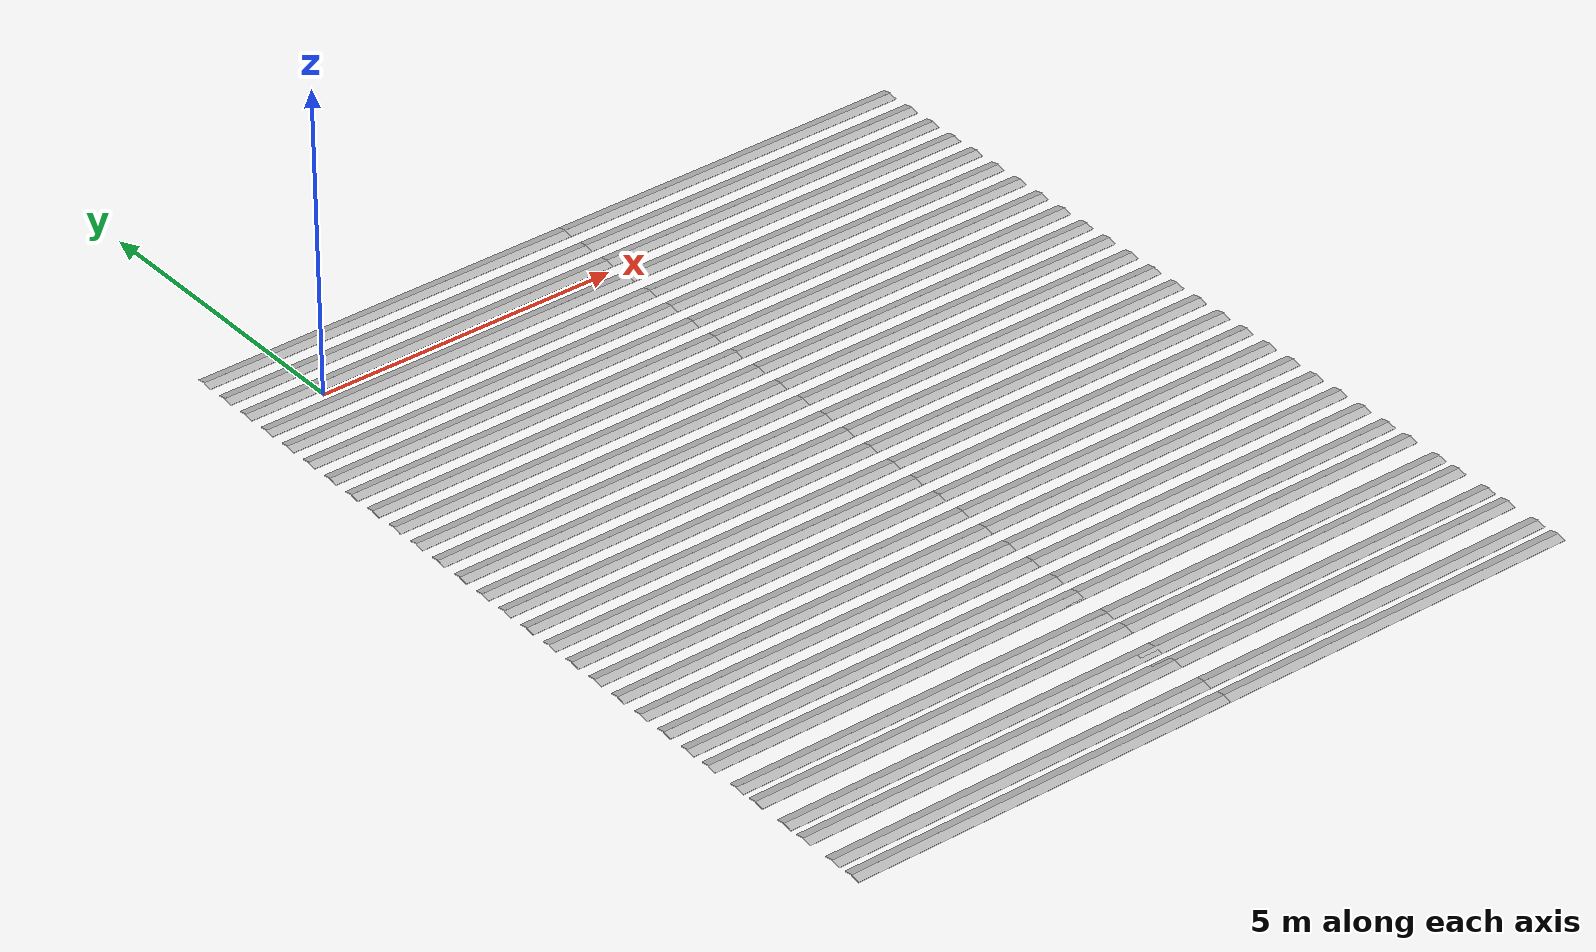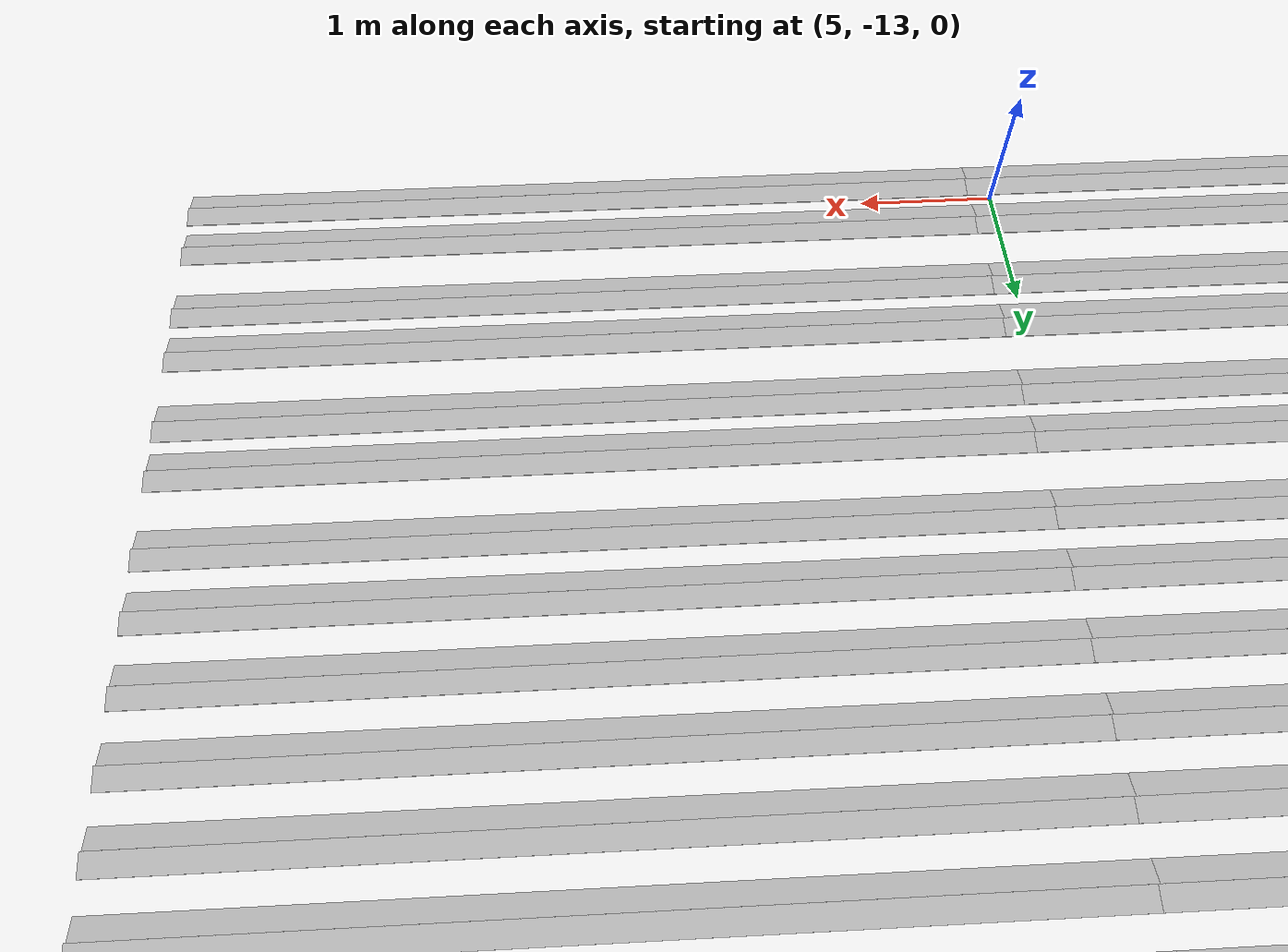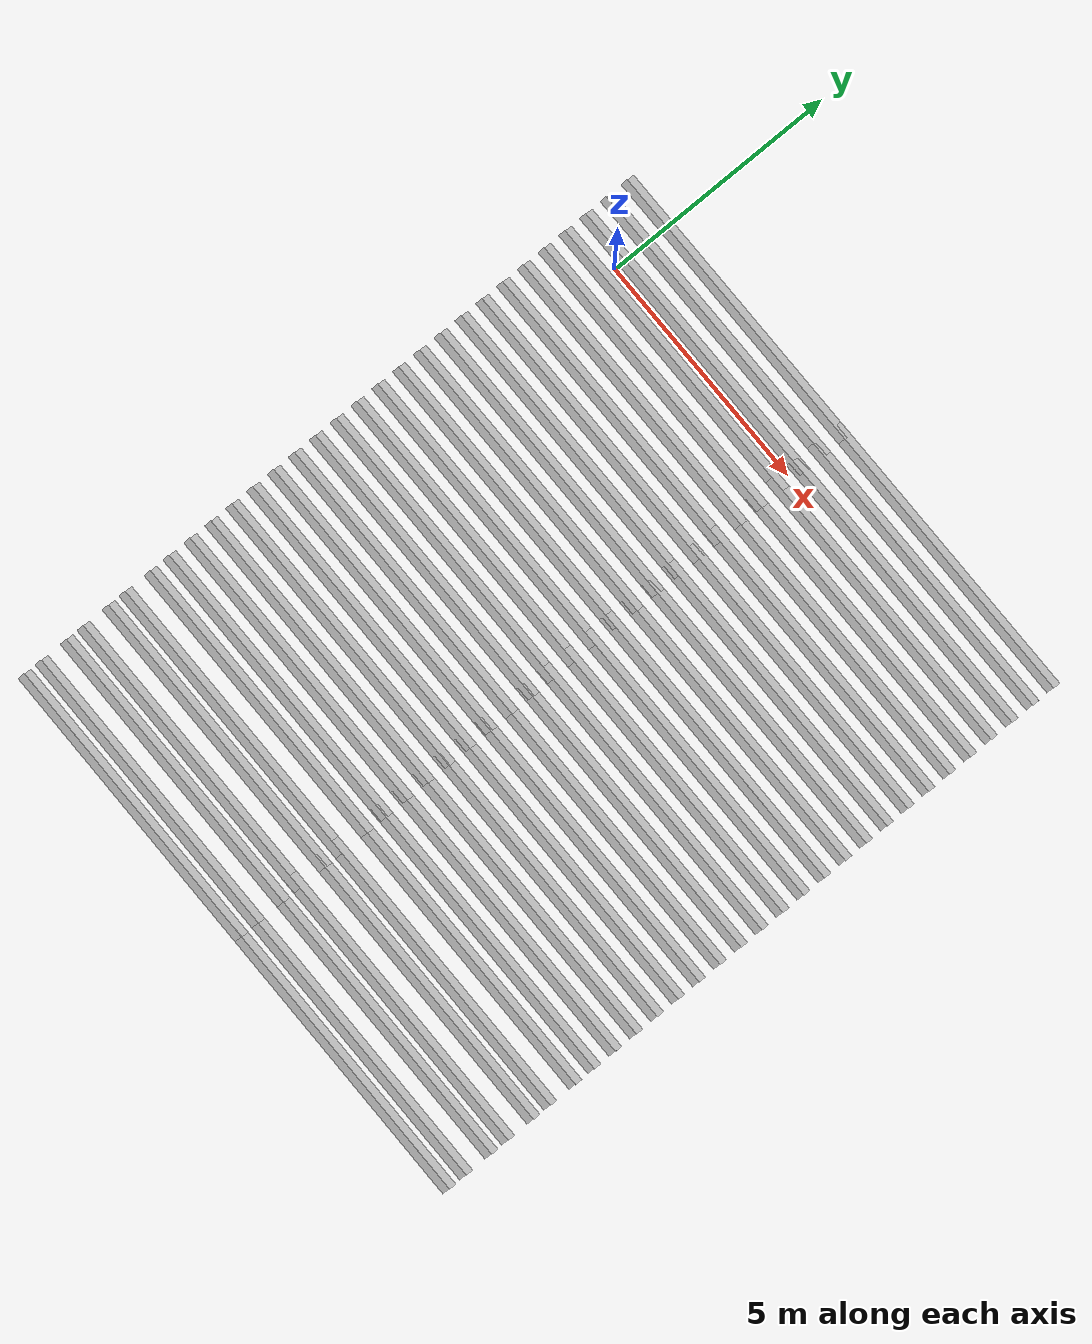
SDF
<?xml version='1.0' ?>
<sdf version='1.6'>
    <model name='simple_slope'>
    <static>true</static>
    <link name="linkS34">
      <pose> 8.0 -1.25 -0.005 0.0 0.0 0.0 </pose>
      <static>true</static>
        <visual name="slope34">
        <cast_shadows>1</cast_shadows>
          <geometry>
            <mesh><uri>model://simple_slope/meshes/slope.obj</uri></mesh>
          </geometry>
        </visual>
      </link>
    <link name="linkS134">
      <pose> 8.0 -1.25 -0.005 0.0 0.0 3.1416 </pose>
      <static>true</static>
        <visual name="slope134">
        <cast_shadows>1</cast_shadows>
          <geometry>
            <mesh><uri>model://simple_slope/meshes/slope.obj</uri></mesh>
          </geometry>
        </visual>
      </link>
    <link name="linkS234">
      <pose> 2.0 -1.25 -0.005 0.0 0.0 0.0 </pose>
      <static>true</static>
        <visual name="slope234">
        <cast_shadows>1</cast_shadows>
          <geometry>
            <mesh><uri>model://simple_slope/meshes/slope.obj</uri></mesh>
          </geometry>
        </visual>
      </link>
    <link name="linkS334">
      <pose> 2.0 -1.25 -0.005 0.0 0.0 3.1416 </pose>
      <static>true</static>
        <visual name="slope334">
        <cast_shadows>1</cast_shadows>
          <geometry>
            <mesh><uri>model://simple_slope/meshes/slope.obj</uri></mesh>
          </geometry>
        </visual>
      </link>
    <link name="linkS434">
      <pose> 8.0 -4.25 -0.005 0.0 0.0 0.0 </pose>
      <static>true</static>
        <visual name="slope434">
        <cast_shadows>1</cast_shadows>
          <geometry>
            <mesh><uri>model://simple_slope/meshes/slope.obj</uri></mesh>
          </geometry>
        </visual>
      </link>
    <link name="linkS534">
      <pose> 8.0 -4.25 -0.005 0.0 0.0 3.1416 </pose>
      <static>true</static>
        <visual name="slope534">
        <cast_shadows>1</cast_shadows>
          <geometry>
            <mesh><uri>model://simple_slope/meshes/slope.obj</uri></mesh>
          </geometry>
        </visual>
      </link>
    <link name="linkS634">
      <pose> 2.0 -4.25 -0.005 0.0 0.0 0.0 </pose>
      <static>true</static>
        <visual name="slope634">
        <cast_shadows>1</cast_shadows>
          <geometry>
            <mesh><uri>model://simple_slope/meshes/slope.obj</uri></mesh>
          </geometry>
        </visual>
      </link>
    <link name="linkS734">
      <pose> 2.0 -4.25 -0.005 0.0 0.0 3.1416 </pose>
      <static>true</static>
        <visual name="slope734">
        <cast_shadows>1</cast_shadows>
          <geometry>
            <mesh><uri>model://simple_slope/meshes/slope.obj</uri></mesh>
          </geometry>
        </visual>
      </link>
    <link name="linkS834">
      <pose> 8.0 -7.25 -0.005 0.0 0.0 0.0 </pose>
      <static>true</static>
        <visual name="slope834">
        <cast_shadows>1</cast_shadows>
          <geometry>
            <mesh><uri>model://simple_slope/meshes/slope.obj</uri></mesh>
          </geometry>
        </visual>
      </link>
    <link name="linkS934">
      <pose> 8.0 -7.25 -0.005 0.0 0.0 3.1416 </pose>
      <static>true</static>
        <visual name="slope934">
        <cast_shadows>1</cast_shadows>
          <geometry>
            <mesh><uri>model://simple_slope/meshes/slope.obj</uri></mesh>
          </geometry>
        </visual>
      </link>
    <link name="linkS1034">
      <pose> 2.0 -7.25 -0.005 0.0 0.0 0.0 </pose>
      <static>true</static>
        <visual name="slope1034">
        <cast_shadows>1</cast_shadows>
          <geometry>
            <mesh><uri>model://simple_slope/meshes/slope.obj</uri></mesh>
          </geometry>
        </visual>
      </link>
    <link name="linkS1134">
      <pose> 2.0 -7.25 -0.005 0.0 0.0 3.1416 </pose>
      <static>true</static>
        <visual name="slope1134">
        <cast_shadows>1</cast_shadows>
          <geometry>
            <mesh><uri>model://simple_slope/meshes/slope.obj</uri></mesh>
          </geometry>
        </visual>
      </link>
    <link name="linkS1234">
      <pose> 8.0 -10.2 -0.005 0.0 0.0 0.0 </pose>
      <static>true</static>
        <visual name="slope1234">
        <cast_shadows>1</cast_shadows>
          <geometry>
            <mesh><uri>model://simple_slope/meshes/slope.obj</uri></mesh>
          </geometry>
        </visual>
      </link>
    <link name="linkS1334">
      <pose> 8.0 -10.2 -0.005 0.0 0.0 3.1416 </pose>
      <static>true</static>
        <visual name="slope1334">
        <cast_shadows>1</cast_shadows>
          <geometry>
            <mesh><uri>model://simple_slope/meshes/slope.obj</uri></mesh>
          </geometry>
        </visual>
      </link>
    <link name="linkS1434">
      <pose> 2.0 -10.2 -0.005 0.0 0.0 0.0 </pose>
      <static>true</static>
        <visual name="slope1434">
        <cast_shadows>1</cast_shadows>
          <geometry>
            <mesh><uri>model://simple_slope/meshes/slope.obj</uri></mesh>
          </geometry>
        </visual>
      </link>
    <link name="linkS1534">
      <pose> 2.0 -10.2 -0.005 0.0 0.0 3.1416 </pose>
      <static>true</static>
        <visual name="slope1534">
        <cast_shadows>1</cast_shadows>
          <geometry>
            <mesh><uri>model://simple_slope/meshes/slope.obj</uri></mesh>
          </geometry>
        </visual>
      </link>
    <link name="linkS1634">
      <pose> 8.0 -13.2 -0.005 0.0 0.0 0.0 </pose>
      <static>true</static>
        <visual name="slope1634">
        <cast_shadows>1</cast_shadows>
          <geometry>
            <mesh><uri>model://simple_slope/meshes/slope.obj</uri></mesh>
          </geometry>
        </visual>
      </link>
    <link name="linkS1734">
      <pose> 8.0 -13.2 -0.005 0.0 0.0 3.1416 </pose>
      <static>true</static>
        <visual name="slope1734">
        <cast_shadows>1</cast_shadows>
          <geometry>
            <mesh><uri>model://simple_slope/meshes/slope.obj</uri></mesh>
          </geometry>
        </visual>
      </link>
    <link name="linkS1834">
      <pose> 2.0 -13.2 -0.005 0.0 0.0 0.0 </pose>
      <static>true</static>
        <visual name="slope1834">
        <cast_shadows>1</cast_shadows>
          <geometry>
            <mesh><uri>model://simple_slope/meshes/slope.obj</uri></mesh>
          </geometry>
        </visual>
      </link>
    <link name="linkS1934">
      <pose> 2.0 -13.2 -0.005 0.0 0.0 3.1416 </pose>
      <static>true</static>
        <visual name="slope1934">
        <cast_shadows>1</cast_shadows>
          <geometry>
            <mesh><uri>model://simple_slope/meshes/slope.obj</uri></mesh>
          </geometry>
        </visual>
      </link>
    <link name="linkS68">
      <pose> 8.0 -0.75 -0.005 0.0 0.0 0.0 </pose>
      <static>true</static>
        <visual name="slope68">
        <cast_shadows>1</cast_shadows>
          <geometry>
            <mesh><uri>model://simple_slope/meshes/slope.obj</uri></mesh>
          </geometry>
        </visual>
      </link>
    <link name="linkS168">
      <pose> 8.0 -0.75 -0.005 0.0 0.0 3.1416 </pose>
      <static>true</static>
        <visual name="slope168">
        <cast_shadows>1</cast_shadows>
          <geometry>
            <mesh><uri>model://simple_slope/meshes/slope.obj</uri></mesh>
          </geometry>
        </visual>
      </link>
    <link name="linkS268">
      <pose> 2.0 -0.75 -0.005 0.0 0.0 0.0 </pose>
      <static>true</static>
        <visual name="slope268">
        <cast_shadows>1</cast_shadows>
          <geometry>
            <mesh><uri>model://simple_slope/meshes/slope.obj</uri></mesh>
          </geometry>
        </visual>
      </link>
    <link name="linkS368">
      <pose> 2.0 -0.75 -0.005 0.0 0.0 3.1416 </pose>
      <static>true</static>
        <visual name="slope368">
        <cast_shadows>1</cast_shadows>
          <geometry>
            <mesh><uri>model://simple_slope/meshes/slope.obj</uri></mesh>
          </geometry>
        </visual>
      </link>
    <link name="linkS468">
      <pose> 8.0 -3.75 -0.005 0.0 0.0 0.0 </pose>
      <static>true</static>
        <visual name="slope468">
        <cast_shadows>1</cast_shadows>
          <geometry>
            <mesh><uri>model://simple_slope/meshes/slope.obj</uri></mesh>
          </geometry>
        </visual>
      </link>
    <link name="linkS568">
      <pose> 8.0 -3.75 -0.005 0.0 0.0 3.1416 </pose>
      <static>true</static>
        <visual name="slope568">
        <cast_shadows>1</cast_shadows>
          <geometry>
            <mesh><uri>model://simple_slope/meshes/slope.obj</uri></mesh>
          </geometry>
        </visual>
      </link>
    <link name="linkS668">
      <pose> 2.0 -3.75 -0.005 0.0 0.0 0.0 </pose>
      <static>true</static>
        <visual name="slope668">
        <cast_shadows>1</cast_shadows>
          <geometry>
            <mesh><uri>model://simple_slope/meshes/slope.obj</uri></mesh>
          </geometry>
        </visual>
      </link>
    <link name="linkS768">
      <pose> 2.0 -3.75 -0.005 0.0 0.0 3.1416 </pose>
      <static>true</static>
        <visual name="slope768">
        <cast_shadows>1</cast_shadows>
          <geometry>
            <mesh><uri>model://simple_slope/meshes/slope.obj</uri></mesh>
          </geometry>
        </visual>
      </link>
    <link name="linkS868">
      <pose> 8.0 -6.75 -0.005 0.0 0.0 0.0 </pose>
      <static>true</static>
        <visual name="slope868">
        <cast_shadows>1</cast_shadows>
          <geometry>
            <mesh><uri>model://simple_slope/meshes/slope.obj</uri></mesh>
          </geometry>
        </visual>
      </link>
    <link name="linkS968">
      <pose> 8.0 -6.75 -0.005 0.0 0.0 3.1416 </pose>
      <static>true</static>
        <visual name="slope968">
        <cast_shadows>1</cast_shadows>
          <geometry>
            <mesh><uri>model://simple_slope/meshes/slope.obj</uri></mesh>
          </geometry>
        </visual>
      </link>
    <link name="linkS1068">
      <pose> 2.0 -6.75 -0.005 0.0 0.0 0.0 </pose>
      <static>true</static>
        <visual name="slope1068">
        <cast_shadows>1</cast_shadows>
          <geometry>
            <mesh><uri>model://simple_slope/meshes/slope.obj</uri></mesh>
          </geometry>
        </visual>
      </link>
    <link name="linkS1168">
      <pose> 2.0 -6.75 -0.005 0.0 0.0 3.1416 </pose>
      <static>true</static>
        <visual name="slope1168">
        <cast_shadows>1</cast_shadows>
          <geometry>
            <mesh><uri>model://simple_slope/meshes/slope.obj</uri></mesh>
          </geometry>
        </visual>
      </link>
    <link name="linkS1268">
      <pose> 8.0 -9.75 -0.005 0.0 0.0 0.0 </pose>
      <static>true</static>
        <visual name="slope1268">
        <cast_shadows>1</cast_shadows>
          <geometry>
            <mesh><uri>model://simple_slope/meshes/slope.obj</uri></mesh>
          </geometry>
        </visual>
      </link>
    <link name="linkS1368">
      <pose> 8.0 -9.75 -0.005 0.0 0.0 3.1416 </pose>
      <static>true</static>
        <visual name="slope1368">
        <cast_shadows>1</cast_shadows>
          <geometry>
            <mesh><uri>model://simple_slope/meshes/slope.obj</uri></mesh>
          </geometry>
        </visual>
      </link>
    <link name="linkS1468">
      <pose> 2.0 -9.75 -0.005 0.0 0.0 0.0 </pose>
      <static>true</static>
        <visual name="slope1468">
        <cast_shadows>1</cast_shadows>
          <geometry>
            <mesh><uri>model://simple_slope/meshes/slope.obj</uri></mesh>
          </geometry>
        </visual>
      </link>
    <link name="linkS1568">
      <pose> 2.0 -9.75 -0.005 0.0 0.0 3.1416 </pose>
      <static>true</static>
        <visual name="slope1568">
        <cast_shadows>1</cast_shadows>
          <geometry>
            <mesh><uri>model://simple_slope/meshes/slope.obj</uri></mesh>
          </geometry>
        </visual>
      </link>
    <link name="linkS1668">
      <pose> 8.0 -12.8 -0.005 0.0 0.0 0.0 </pose>
      <static>true</static>
        <visual name="slope1668">
        <cast_shadows>1</cast_shadows>
          <geometry>
            <mesh><uri>model://simple_slope/meshes/slope.obj</uri></mesh>
          </geometry>
        </visual>
      </link>
    <link name="linkS1768">
      <pose> 8.0 -12.8 -0.005 0.0 0.0 3.1416 </pose>
      <static>true</static>
        <visual name="slope1768">
        <cast_shadows>1</cast_shadows>
          <geometry>
            <mesh><uri>model://simple_slope/meshes/slope.obj</uri></mesh>
          </geometry>
        </visual>
      </link>
    <link name="linkS1868">
      <pose> 2.0 -12.8 -0.005 0.0 0.0 0.0 </pose>
      <static>true</static>
        <visual name="slope1868">
        <cast_shadows>1</cast_shadows>
          <geometry>
            <mesh><uri>model://simple_slope/meshes/slope.obj</uri></mesh>
          </geometry>
        </visual>
      </link>
    <link name="linkS1968">
      <pose> 2.0 -12.8 -0.005 0.0 0.0 3.1416 </pose>
      <static>true</static>
        <visual name="slope1968">
        <cast_shadows>1</cast_shadows>
          <geometry>
            <mesh><uri>model://simple_slope/meshes/slope.obj</uri></mesh>
          </geometry>
        </visual>
      </link>
    <link name="linkS102">
      <pose> 8.0 -0.25 -0.005 0.0 0.0 0.0 </pose>
      <static>true</static>
        <visual name="slope102">
        <cast_shadows>1</cast_shadows>
          <geometry>
            <mesh><uri>model://simple_slope/meshes/slope.obj</uri></mesh>
          </geometry>
        </visual>
      </link>
    <link name="linkS202">
      <pose> 8.0 -0.25 -0.005 0.0 0.0 3.1416 </pose>
      <static>true</static>
        <visual name="slope202">
        <cast_shadows>1</cast_shadows>
          <geometry>
            <mesh><uri>model://simple_slope/meshes/slope.obj</uri></mesh>
          </geometry>
        </visual>
      </link>
    <link name="linkS302">
      <pose> 2.0 -0.25 -0.005 0.0 0.0 0.0 </pose>
      <static>true</static>
        <visual name="slope302">
        <cast_shadows>1</cast_shadows>
          <geometry>
            <mesh><uri>model://simple_slope/meshes/slope.obj</uri></mesh>
          </geometry>
        </visual>
      </link>
    <link name="linkS402">
      <pose> 2.0 -0.25 -0.005 0.0 0.0 3.1416 </pose>
      <static>true</static>
        <visual name="slope402">
        <cast_shadows>1</cast_shadows>
          <geometry>
            <mesh><uri>model://simple_slope/meshes/slope.obj</uri></mesh>
          </geometry>
        </visual>
      </link>
    <link name="linkS502">
      <pose> 8.0 -3.25 -0.005 0.0 0.0 0.0 </pose>
      <static>true</static>
        <visual name="slope502">
        <cast_shadows>1</cast_shadows>
          <geometry>
            <mesh><uri>model://simple_slope/meshes/slope.obj</uri></mesh>
          </geometry>
        </visual>
      </link>
    <link name="linkS602">
      <pose> 8.0 -3.25 -0.005 0.0 0.0 3.1416 </pose>
      <static>true</static>
        <visual name="slope602">
        <cast_shadows>1</cast_shadows>
          <geometry>
            <mesh><uri>model://simple_slope/meshes/slope.obj</uri></mesh>
          </geometry>
        </visual>
      </link>
    <link name="linkS702">
      <pose> 2.0 -3.25 -0.005 0.0 0.0 0.0 </pose>
      <static>true</static>
        <visual name="slope702">
        <cast_shadows>1</cast_shadows>
          <geometry>
            <mesh><uri>model://simple_slope/meshes/slope.obj</uri></mesh>
          </geometry>
        </visual>
      </link>
    <link name="linkS802">
      <pose> 2.0 -3.25 -0.005 0.0 0.0 3.1416 </pose>
      <static>true</static>
        <visual name="slope802">
        <cast_shadows>1</cast_shadows>
          <geometry>
            <mesh><uri>model://simple_slope/meshes/slope.obj</uri></mesh>
          </geometry>
        </visual>
      </link>
    <link name="linkS902">
      <pose> 8.0 -6.25 -0.005 0.0 0.0 0.0 </pose>
      <static>true</static>
        <visual name="slope902">
        <cast_shadows>1</cast_shadows>
          <geometry>
            <mesh><uri>model://simple_slope/meshes/slope.obj</uri></mesh>
          </geometry>
        </visual>
      </link>
    <link name="linkS1002">
      <pose> 8.0 -6.25 -0.005 0.0 0.0 3.1416 </pose>
      <static>true</static>
        <visual name="slope1002">
        <cast_shadows>1</cast_shadows>
          <geometry>
            <mesh><uri>model://simple_slope/meshes/slope.obj</uri></mesh>
          </geometry>
        </visual>
      </link>
    <link name="linkS1102">
      <pose> 2.0 -6.25 -0.005 0.0 0.0 0.0 </pose>
      <static>true</static>
        <visual name="slope1102">
        <cast_shadows>1</cast_shadows>
          <geometry>
            <mesh><uri>model://simple_slope/meshes/slope.obj</uri></mesh>
          </geometry>
        </visual>
      </link>
    <link name="linkS1202">
      <pose> 2.0 -6.25 -0.005 0.0 0.0 3.1416 </pose>
      <static>true</static>
        <visual name="slope1202">
        <cast_shadows>1</cast_shadows>
          <geometry>
            <mesh><uri>model://simple_slope/meshes/slope.obj</uri></mesh>
          </geometry>
        </visual>
      </link>
    <link name="linkS1302">
      <pose> 8.0 -9.25 -0.005 0.0 0.0 0.0 </pose>
      <static>true</static>
        <visual name="slope1302">
        <cast_shadows>1</cast_shadows>
          <geometry>
            <mesh><uri>model://simple_slope/meshes/slope.obj</uri></mesh>
          </geometry>
        </visual>
      </link>
    <link name="linkS1402">
      <pose> 8.0 -9.25 -0.005 0.0 0.0 3.1416 </pose>
      <static>true</static>
        <visual name="slope1402">
        <cast_shadows>1</cast_shadows>
          <geometry>
            <mesh><uri>model://simple_slope/meshes/slope.obj</uri></mesh>
          </geometry>
        </visual>
      </link>
    <link name="linkS1502">
      <pose> 2.0 -9.25 -0.005 0.0 0.0 0.0 </pose>
      <static>true</static>
        <visual name="slope1502">
        <cast_shadows>1</cast_shadows>
          <geometry>
            <mesh><uri>model://simple_slope/meshes/slope.obj</uri></mesh>
          </geometry>
        </visual>
      </link>
    <link name="linkS1602">
      <pose> 2.0 -9.25 -0.005 0.0 0.0 3.1416 </pose>
      <static>true</static>
        <visual name="slope1602">
        <cast_shadows>1</cast_shadows>
          <geometry>
            <mesh><uri>model://simple_slope/meshes/slope.obj</uri></mesh>
          </geometry>
        </visual>
      </link>
    <link name="linkS1702">
      <pose> 8.0 -12.2 -0.005 0.0 0.0 0.0 </pose>
      <static>true</static>
        <visual name="slope1702">
        <cast_shadows>1</cast_shadows>
          <geometry>
            <mesh><uri>model://simple_slope/meshes/slope.obj</uri></mesh>
          </geometry>
        </visual>
      </link>
    <link name="linkS1802">
      <pose> 8.0 -12.2 -0.005 0.0 0.0 3.1416 </pose>
      <static>true</static>
        <visual name="slope1802">
        <cast_shadows>1</cast_shadows>
          <geometry>
            <mesh><uri>model://simple_slope/meshes/slope.obj</uri></mesh>
          </geometry>
        </visual>
      </link>
    <link name="linkS1902">
      <pose> 2.0 -12.2 -0.005 0.0 0.0 0.0 </pose>
      <static>true</static>
        <visual name="slope1902">
        <cast_shadows>1</cast_shadows>
          <geometry>
            <mesh><uri>model://simple_slope/meshes/slope.obj</uri></mesh>
          </geometry>
        </visual>
      </link>
    <link name="linkS2002">
      <pose> 2.0 -12.2 -0.005 0.0 0.0 3.1416 </pose>
      <static>true</static>
        <visual name="slope2002">
        <cast_shadows>1</cast_shadows>
          <geometry>
            <mesh><uri>model://simple_slope/meshes/slope.obj</uri></mesh>
          </geometry>
        </visual>
      </link>
    <link name="linkS136">
      <pose> 8.0 0.25 -0.005 0.0 0.0 0.0 </pose>
      <static>true</static>
        <visual name="slope136">
        <cast_shadows>1</cast_shadows>
          <geometry>
            <mesh><uri>model://simple_slope/meshes/slope.obj</uri></mesh>
          </geometry>
        </visual>
      </link>
    <link name="linkS236">
      <pose> 8.0 0.25 -0.005 0.0 0.0 3.1416 </pose>
      <static>true</static>
        <visual name="slope236">
        <cast_shadows>1</cast_shadows>
          <geometry>
            <mesh><uri>model://simple_slope/meshes/slope.obj</uri></mesh>
          </geometry>
        </visual>
      </link>
    <link name="linkS336">
      <pose> 2.0 0.25 -0.005 0.0 0.0 0.0 </pose>
      <static>true</static>
        <visual name="slope336">
        <cast_shadows>1</cast_shadows>
          <geometry>
            <mesh><uri>model://simple_slope/meshes/slope.obj</uri></mesh>
          </geometry>
        </visual>
      </link>
    <link name="linkS436">
      <pose> 2.0 0.25 -0.005 0.0 0.0 3.1416 </pose>
      <static>true</static>
        <visual name="slope436">
        <cast_shadows>1</cast_shadows>
          <geometry>
            <mesh><uri>model://simple_slope/meshes/slope.obj</uri></mesh>
          </geometry>
        </visual>
      </link>
    <link name="linkS536">
      <pose> 8.0 -2.75 -0.005 0.0 0.0 0.0 </pose>
      <static>true</static>
        <visual name="slope536">
        <cast_shadows>1</cast_shadows>
          <geometry>
            <mesh><uri>model://simple_slope/meshes/slope.obj</uri></mesh>
          </geometry>
        </visual>
      </link>
    <link name="linkS636">
      <pose> 8.0 -2.75 -0.005 0.0 0.0 3.1416 </pose>
      <static>true</static>
        <visual name="slope636">
        <cast_shadows>1</cast_shadows>
          <geometry>
            <mesh><uri>model://simple_slope/meshes/slope.obj</uri></mesh>
          </geometry>
        </visual>
      </link>
    <link name="linkS736">
      <pose> 2.0 -2.75 -0.005 0.0 0.0 0.0 </pose>
      <static>true</static>
        <visual name="slope736">
        <cast_shadows>1</cast_shadows>
          <geometry>
            <mesh><uri>model://simple_slope/meshes/slope.obj</uri></mesh>
          </geometry>
        </visual>
      </link>
    <link name="linkS836">
      <pose> 2.0 -2.75 -0.005 0.0 0.0 3.1416 </pose>
      <static>true</static>
        <visual name="slope836">
        <cast_shadows>1</cast_shadows>
          <geometry>
            <mesh><uri>model://simple_slope/meshes/slope.obj</uri></mesh>
          </geometry>
        </visual>
      </link>
    <link name="linkS936">
      <pose> 8.0 -5.75 -0.005 0.0 0.0 0.0 </pose>
      <static>true</static>
        <visual name="slope936">
        <cast_shadows>1</cast_shadows>
          <geometry>
            <mesh><uri>model://simple_slope/meshes/slope.obj</uri></mesh>
          </geometry>
        </visual>
      </link>
    <link name="linkS1036">
      <pose> 8.0 -5.75 -0.005 0.0 0.0 3.1416 </pose>
      <static>true</static>
        <visual name="slope1036">
        <cast_shadows>1</cast_shadows>
          <geometry>
            <mesh><uri>model://simple_slope/meshes/slope.obj</uri></mesh>
          </geometry>
        </visual>
      </link>
    <link name="linkS1136">
      <pose> 2.0 -5.75 -0.005 0.0 0.0 0.0 </pose>
      <static>true</static>
        <visual name="slope1136">
        <cast_shadows>1</cast_shadows>
          <geometry>
            <mesh><uri>model://simple_slope/meshes/slope.obj</uri></mesh>
          </geometry>
        </visual>
      </link>
    <link name="linkS1236">
      <pose> 2.0 -5.75 -0.005 0.0 0.0 3.1416 </pose>
      <static>true</static>
        <visual name="slope1236">
        <cast_shadows>1</cast_shadows>
          <geometry>
            <mesh><uri>model://simple_slope/meshes/slope.obj</uri></mesh>
          </geometry>
        </visual>
      </link>
    <link name="linkS1336">
      <pose> 8.0 -8.75 -0.005 0.0 0.0 0.0 </pose>
      <static>true</static>
        <visual name="slope1336">
        <cast_shadows>1</cast_shadows>
          <geometry>
            <mesh><uri>model://simple_slope/meshes/slope.obj</uri></mesh>
          </geometry>
        </visual>
      </link>
    <link name="linkS1436">
      <pose> 8.0 -8.75 -0.005 0.0 0.0 3.1416 </pose>
      <static>true</static>
        <visual name="slope1436">
        <cast_shadows>1</cast_shadows>
          <geometry>
            <mesh><uri>model://simple_slope/meshes/slope.obj</uri></mesh>
          </geometry>
        </visual>
      </link>
    <link name="linkS1536">
      <pose> 2.0 -8.75 -0.005 0.0 0.0 0.0 </pose>
      <static>true</static>
        <visual name="slope1536">
        <cast_shadows>1</cast_shadows>
          <geometry>
            <mesh><uri>model://simple_slope/meshes/slope.obj</uri></mesh>
          </geometry>
        </visual>
      </link>
    <link name="linkS1636">
      <pose> 2.0 -8.75 -0.005 0.0 0.0 3.1416 </pose>
      <static>true</static>
        <visual name="slope1636">
        <cast_shadows>1</cast_shadows>
          <geometry>
            <mesh><uri>model://simple_slope/meshes/slope.obj</uri></mesh>
          </geometry>
        </visual>
      </link>
    <link name="linkS1736">
      <pose> 8.0 -11.8 -0.005 0.0 0.0 0.0 </pose>
      <static>true</static>
        <visual name="slope1736">
        <cast_shadows>1</cast_shadows>
          <geometry>
            <mesh><uri>model://simple_slope/meshes/slope.obj</uri></mesh>
          </geometry>
        </visual>
      </link>
    <link name="linkS1836">
      <pose> 8.0 -11.8 -0.005 0.0 0.0 3.1416 </pose>
      <static>true</static>
        <visual name="slope1836">
        <cast_shadows>1</cast_shadows>
          <geometry>
            <mesh><uri>model://simple_slope/meshes/slope.obj</uri></mesh>
          </geometry>
        </visual>
      </link>
    <link name="linkS1936">
      <pose> 2.0 -11.8 -0.005 0.0 0.0 0.0 </pose>
      <static>true</static>
        <visual name="slope1936">
        <cast_shadows>1</cast_shadows>
          <geometry>
            <mesh><uri>model://simple_slope/meshes/slope.obj</uri></mesh>
          </geometry>
        </visual>
      </link>
    <link name="linkS2036">
      <pose> 2.0 -11.8 -0.005 0.0 0.0 3.1416 </pose>
      <static>true</static>
        <visual name="slope2036">
        <cast_shadows>1</cast_shadows>
          <geometry>
            <mesh><uri>model://simple_slope/meshes/slope.obj</uri></mesh>
          </geometry>
        </visual>
      </link>
    <link name="linkS170">
      <pose> 8.0 0.75 -0.005 0.0 0.0 0.0 </pose>
      <static>true</static>
        <visual name="slope170">
        <cast_shadows>1</cast_shadows>
          <geometry>
            <mesh><uri>model://simple_slope/meshes/slope.obj</uri></mesh>
          </geometry>
        </visual>
      </link>
    <link name="linkS270">
      <pose> 8.0 0.75 -0.005 0.0 0.0 3.1416 </pose>
      <static>true</static>
        <visual name="slope270">
        <cast_shadows>1</cast_shadows>
          <geometry>
            <mesh><uri>model://simple_slope/meshes/slope.obj</uri></mesh>
          </geometry>
        </visual>
      </link>
    <link name="linkS370">
      <pose> 2.0 0.75 -0.005 0.0 0.0 0.0 </pose>
      <static>true</static>
        <visual name="slope370">
        <cast_shadows>1</cast_shadows>
          <geometry>
            <mesh><uri>model://simple_slope/meshes/slope.obj</uri></mesh>
          </geometry>
        </visual>
      </link>
    <link name="linkS470">
      <pose> 2.0 0.75 -0.005 0.0 0.0 3.1416 </pose>
      <static>true</static>
        <visual name="slope470">
        <cast_shadows>1</cast_shadows>
          <geometry>
            <mesh><uri>model://simple_slope/meshes/slope.obj</uri></mesh>
          </geometry>
        </visual>
      </link>
    <link name="linkS570">
      <pose> 8.0 -2.25 -0.005 0.0 0.0 0.0 </pose>
      <static>true</static>
        <visual name="slope570">
        <cast_shadows>1</cast_shadows>
          <geometry>
            <mesh><uri>model://simple_slope/meshes/slope.obj</uri></mesh>
          </geometry>
        </visual>
      </link>
    <link name="linkS670">
      <pose> 8.0 -2.25 -0.005 0.0 0.0 3.1416 </pose>
      <static>true</static>
        <visual name="slope670">
        <cast_shadows>1</cast_shadows>
          <geometry>
            <mesh><uri>model://simple_slope/meshes/slope.obj</uri></mesh>
          </geometry>
        </visual>
      </link>
    <link name="linkS770">
      <pose> 2.0 -2.25 -0.005 0.0 0.0 0.0 </pose>
      <static>true</static>
        <visual name="slope770">
        <cast_shadows>1</cast_shadows>
          <geometry>
            <mesh><uri>model://simple_slope/meshes/slope.obj</uri></mesh>
          </geometry>
        </visual>
      </link>
    <link name="linkS870">
      <pose> 2.0 -2.25 -0.005 0.0 0.0 3.1416 </pose>
      <static>true</static>
        <visual name="slope870">
        <cast_shadows>1</cast_shadows>
          <geometry>
            <mesh><uri>model://simple_slope/meshes/slope.obj</uri></mesh>
          </geometry>
        </visual>
      </link>
    <link name="linkS970">
      <pose> 8.0 -5.25 -0.005 0.0 0.0 0.0 </pose>
      <static>true</static>
        <visual name="slope970">
        <cast_shadows>1</cast_shadows>
          <geometry>
            <mesh><uri>model://simple_slope/meshes/slope.obj</uri></mesh>
          </geometry>
        </visual>
      </link>
    <link name="linkS1070">
      <pose> 8.0 -5.25 -0.005 0.0 0.0 3.1416 </pose>
      <static>true</static>
        <visual name="slope1070">
        <cast_shadows>1</cast_shadows>
          <geometry>
            <mesh><uri>model://simple_slope/meshes/slope.obj</uri></mesh>
          </geometry>
        </visual>
      </link>
    <link name="linkS1170">
      <pose> 2.0 -5.25 -0.005 0.0 0.0 0.0 </pose>
      <static>true</static>
        <visual name="slope1170">
        <cast_shadows>1</cast_shadows>
          <geometry>
            <mesh><uri>model://simple_slope/meshes/slope.obj</uri></mesh>
          </geometry>
        </visual>
      </link>
    <link name="linkS1270">
      <pose> 2.0 -5.25 -0.005 0.0 0.0 3.1416 </pose>
      <static>true</static>
        <visual name="slope1270">
        <cast_shadows>1</cast_shadows>
          <geometry>
            <mesh><uri>model://simple_slope/meshes/slope.obj</uri></mesh>
          </geometry>
        </visual>
      </link>
    <link name="linkS1370">
      <pose> 8.0 -8.25 -0.005 0.0 0.0 0.0 </pose>
      <static>true</static>
        <visual name="slope1370">
        <cast_shadows>1</cast_shadows>
          <geometry>
            <mesh><uri>model://simple_slope/meshes/slope.obj</uri></mesh>
          </geometry>
        </visual>
      </link>
    <link name="linkS1470">
      <pose> 8.0 -8.25 -0.005 0.0 0.0 3.1416 </pose>
      <static>true</static>
        <visual name="slope1470">
        <cast_shadows>1</cast_shadows>
          <geometry>
            <mesh><uri>model://simple_slope/meshes/slope.obj</uri></mesh>
          </geometry>
        </visual>
      </link>
    <link name="linkS1570">
      <pose> 2.0 -8.25 -0.005 0.0 0.0 0.0 </pose>
      <static>true</static>
        <visual name="slope1570">
        <cast_shadows>1</cast_shadows>
          <geometry>
            <mesh><uri>model://simple_slope/meshes/slope.obj</uri></mesh>
          </geometry>
        </visual>
      </link>
    <link name="linkS1670">
      <pose> 2.0 -8.25 -0.005 0.0 0.0 3.1416 </pose>
      <static>true</static>
        <visual name="slope1670">
        <cast_shadows>1</cast_shadows>
          <geometry>
            <mesh><uri>model://simple_slope/meshes/slope.obj</uri></mesh>
          </geometry>
        </visual>
      </link>
    <link name="linkS1770">
      <pose> 8.0 -11.2 -0.005 0.0 0.0 0.0 </pose>
      <static>true</static>
        <visual name="slope1770">
        <cast_shadows>1</cast_shadows>
          <geometry>
            <mesh><uri>model://simple_slope/meshes/slope.obj</uri></mesh>
          </geometry>
        </visual>
      </link>
    <link name="linkS1870">
      <pose> 8.0 -11.2 -0.005 0.0 0.0 3.1416 </pose>
      <static>true</static>
        <visual name="slope1870">
        <cast_shadows>1</cast_shadows>
          <geometry>
            <mesh><uri>model://simple_slope/meshes/slope.obj</uri></mesh>
          </geometry>
        </visual>
      </link>
    <link name="linkS1970">
      <pose> 2.0 -11.2 -0.005 0.0 0.0 0.0 </pose>
      <static>true</static>
        <visual name="slope1970">
        <cast_shadows>1</cast_shadows>
          <geometry>
            <mesh><uri>model://simple_slope/meshes/slope.obj</uri></mesh>
          </geometry>
        </visual>
      </link>
    <link name="linkS2070">
      <pose> 2.0 -11.2 -0.005 0.0 0.0 3.1416 </pose>
      <static>true</static>
        <visual name="slope2070">
        <cast_shadows>1</cast_shadows>
          <geometry>
            <mesh><uri>model://simple_slope/meshes/slope.obj</uri></mesh>
          </geometry>
        </visual>
      </link>
    <link name="linkS204">
      <pose> 8.0 1.25 -0.005 0.0 0.0 0.0 </pose>
      <static>true</static>
        <visual name="slope204">
        <cast_shadows>1</cast_shadows>
          <geometry>
            <mesh><uri>model://simple_slope/meshes/slope.obj</uri></mesh>
          </geometry>
        </visual>
      </link>
    <link name="linkS304">
      <pose> 8.0 1.25 -0.005 0.0 0.0 3.1416 </pose>
      <static>true</static>
        <visual name="slope304">
        <cast_shadows>1</cast_shadows>
          <geometry>
            <mesh><uri>model://simple_slope/meshes/slope.obj</uri></mesh>
          </geometry>
        </visual>
      </link>
    <link name="linkS404">
      <pose> 2.0 1.25 -0.005 0.0 0.0 0.0 </pose>
      <static>true</static>
        <visual name="slope404">
        <cast_shadows>1</cast_shadows>
          <geometry>
            <mesh><uri>model://simple_slope/meshes/slope.obj</uri></mesh>
          </geometry>
        </visual>
      </link>
    <link name="linkS504">
      <pose> 2.0 1.25 -0.005 0.0 0.0 3.1416 </pose>
      <static>true</static>
        <visual name="slope504">
        <cast_shadows>1</cast_shadows>
          <geometry>
            <mesh><uri>model://simple_slope/meshes/slope.obj</uri></mesh>
          </geometry>
        </visual>
      </link>
    <link name="linkS604">
      <pose> 8.0 -1.75 -0.005 0.0 0.0 0.0 </pose>
      <static>true</static>
        <visual name="slope604">
        <cast_shadows>1</cast_shadows>
          <geometry>
            <mesh><uri>model://simple_slope/meshes/slope.obj</uri></mesh>
          </geometry>
        </visual>
      </link>
    <link name="linkS704">
      <pose> 8.0 -1.75 -0.005 0.0 0.0 3.1416 </pose>
      <static>true</static>
        <visual name="slope704">
        <cast_shadows>1</cast_shadows>
          <geometry>
            <mesh><uri>model://simple_slope/meshes/slope.obj</uri></mesh>
          </geometry>
        </visual>
      </link>
    <link name="linkS804">
      <pose> 2.0 -1.75 -0.005 0.0 0.0 0.0 </pose>
      <static>true</static>
        <visual name="slope804">
        <cast_shadows>1</cast_shadows>
          <geometry>
            <mesh><uri>model://simple_slope/meshes/slope.obj</uri></mesh>
          </geometry>
        </visual>
      </link>
    <link name="linkS904">
      <pose> 2.0 -1.75 -0.005 0.0 0.0 3.1416 </pose>
      <static>true</static>
        <visual name="slope904">
        <cast_shadows>1</cast_shadows>
          <geometry>
            <mesh><uri>model://simple_slope/meshes/slope.obj</uri></mesh>
          </geometry>
        </visual>
      </link>
    <link name="linkS1004">
      <pose> 8.0 -4.75 -0.005 0.0 0.0 0.0 </pose>
      <static>true</static>
        <visual name="slope1004">
        <cast_shadows>1</cast_shadows>
          <geometry>
            <mesh><uri>model://simple_slope/meshes/slope.obj</uri></mesh>
          </geometry>
        </visual>
      </link>
    <link name="linkS1104">
      <pose> 8.0 -4.75 -0.005 0.0 0.0 3.1416 </pose>
      <static>true</static>
        <visual name="slope1104">
        <cast_shadows>1</cast_shadows>
          <geometry>
            <mesh><uri>model://simple_slope/meshes/slope.obj</uri></mesh>
          </geometry>
        </visual>
      </link>
    <link name="linkS1204">
      <pose> 2.0 -4.75 -0.005 0.0 0.0 0.0 </pose>
      <static>true</static>
        <visual name="slope1204">
        <cast_shadows>1</cast_shadows>
          <geometry>
            <mesh><uri>model://simple_slope/meshes/slope.obj</uri></mesh>
          </geometry>
        </visual>
      </link>
    <link name="linkS1304">
      <pose> 2.0 -4.75 -0.005 0.0 0.0 3.1416 </pose>
      <static>true</static>
        <visual name="slope1304">
        <cast_shadows>1</cast_shadows>
          <geometry>
            <mesh><uri>model://simple_slope/meshes/slope.obj</uri></mesh>
          </geometry>
        </visual>
      </link>
    <link name="linkS1404">
      <pose> 8.0 -7.75 -0.005 0.0 0.0 0.0 </pose>
      <static>true</static>
        <visual name="slope1404">
        <cast_shadows>1</cast_shadows>
          <geometry>
            <mesh><uri>model://simple_slope/meshes/slope.obj</uri></mesh>
          </geometry>
        </visual>
      </link>
    <link name="linkS1504">
      <pose> 8.0 -7.75 -0.005 0.0 0.0 3.1416 </pose>
      <static>true</static>
        <visual name="slope1504">
        <cast_shadows>1</cast_shadows>
          <geometry>
            <mesh><uri>model://simple_slope/meshes/slope.obj</uri></mesh>
          </geometry>
        </visual>
      </link>
    <link name="linkS1604">
      <pose> 2.0 -7.75 -0.005 0.0 0.0 0.0 </pose>
      <static>true</static>
        <visual name="slope1604">
        <cast_shadows>1</cast_shadows>
          <geometry>
            <mesh><uri>model://simple_slope/meshes/slope.obj</uri></mesh>
          </geometry>
        </visual>
      </link>
    <link name="linkS1704">
      <pose> 2.0 -7.75 -0.005 0.0 0.0 3.1416 </pose>
      <static>true</static>
        <visual name="slope1704">
        <cast_shadows>1</cast_shadows>
          <geometry>
            <mesh><uri>model://simple_slope/meshes/slope.obj</uri></mesh>
          </geometry>
        </visual>
      </link>
    <link name="linkS1804">
      <pose> 8.0 -10.8 -0.005 0.0 0.0 0.0 </pose>
      <static>true</static>
        <visual name="slope1804">
        <cast_shadows>1</cast_shadows>
          <geometry>
            <mesh><uri>model://simple_slope/meshes/slope.obj</uri></mesh>
          </geometry>
        </visual>
      </link>
    <link name="linkS1904">
      <pose> 8.0 -10.8 -0.005 0.0 0.0 3.1416 </pose>
      <static>true</static>
        <visual name="slope1904">
        <cast_shadows>1</cast_shadows>
          <geometry>
            <mesh><uri>model://simple_slope/meshes/slope.obj</uri></mesh>
          </geometry>
        </visual>
      </link>
    <link name="linkS2004">
      <pose> 2.0 -10.8 -0.005 0.0 0.0 0.0 </pose>
      <static>true</static>
        <visual name="slope2004">
        <cast_shadows>1</cast_shadows>
          <geometry>
            <mesh><uri>model://simple_slope/meshes/slope.obj</uri></mesh>
          </geometry>
        </visual>
      </link>
    <link name="linkS2104">
      <pose> 2.0 -10.8 -0.005 0.0 0.0 3.1416 </pose>
      <static>true</static>
        <visual name="slope2104">
        <cast_shadows>1</cast_shadows>
          <geometry>
            <mesh><uri>model://simple_slope/meshes/slope.obj</uri></mesh>
          </geometry>
        </visual>
      </link>
    </model>
</sdf>
